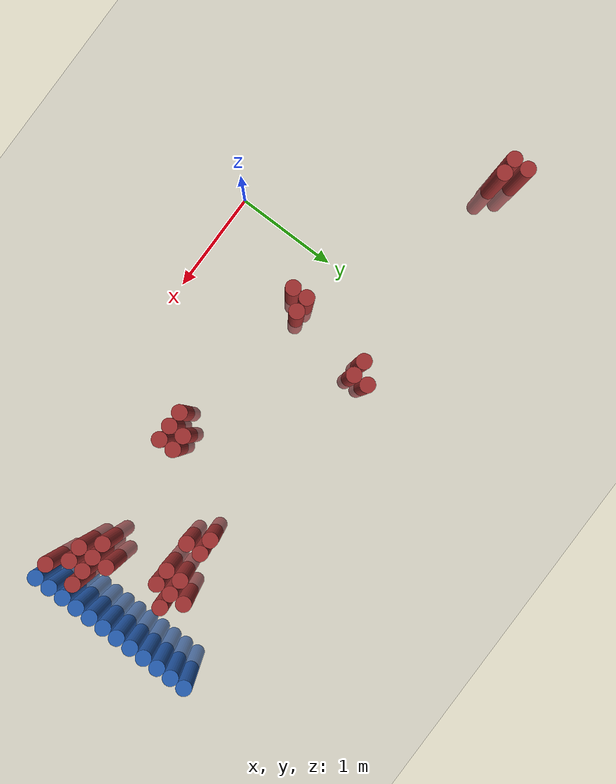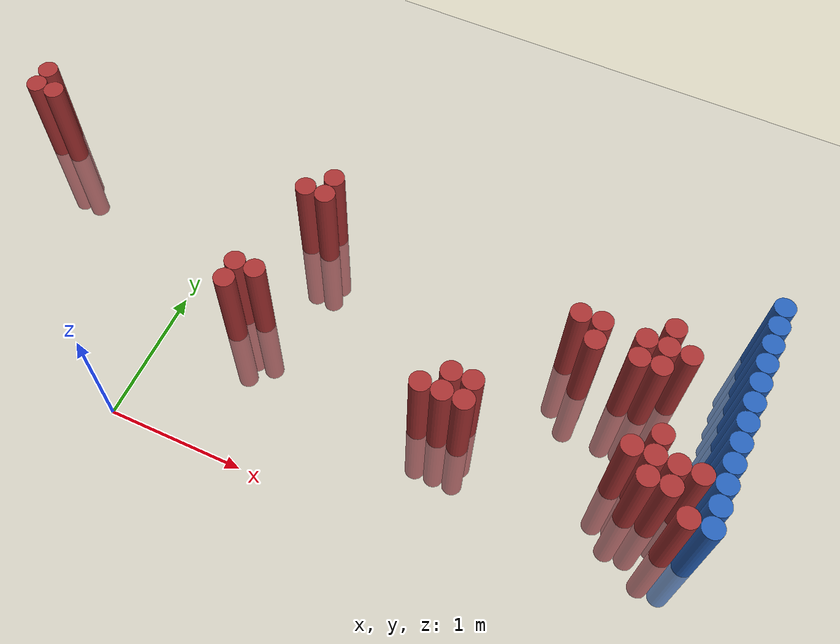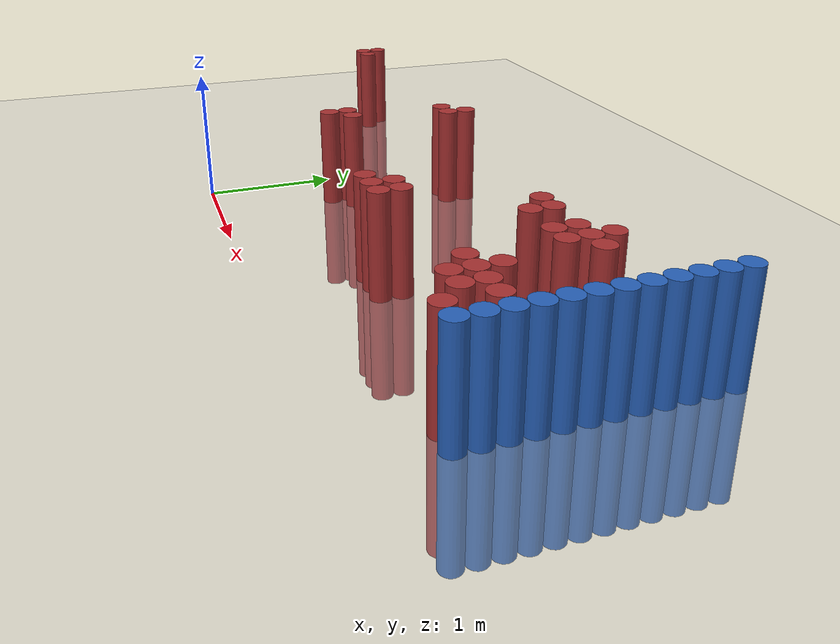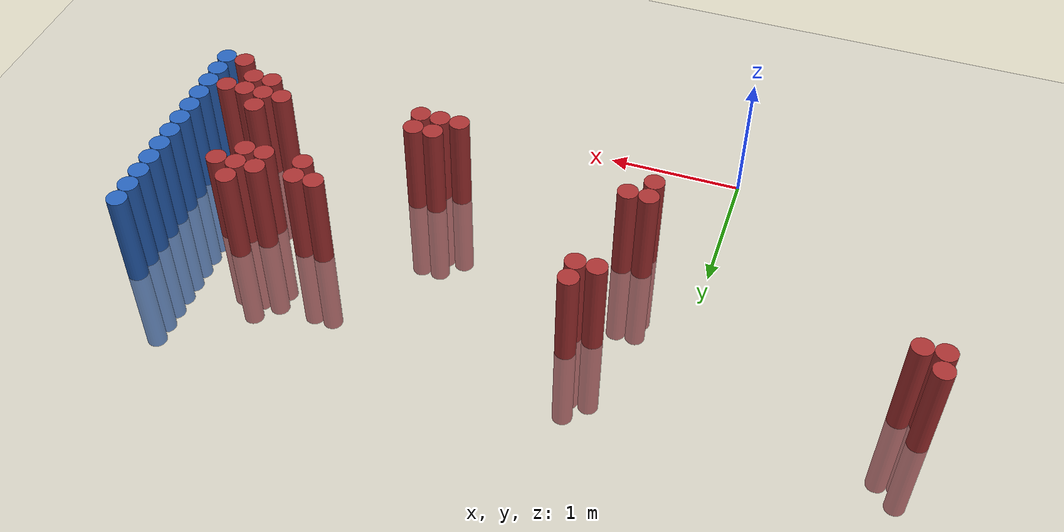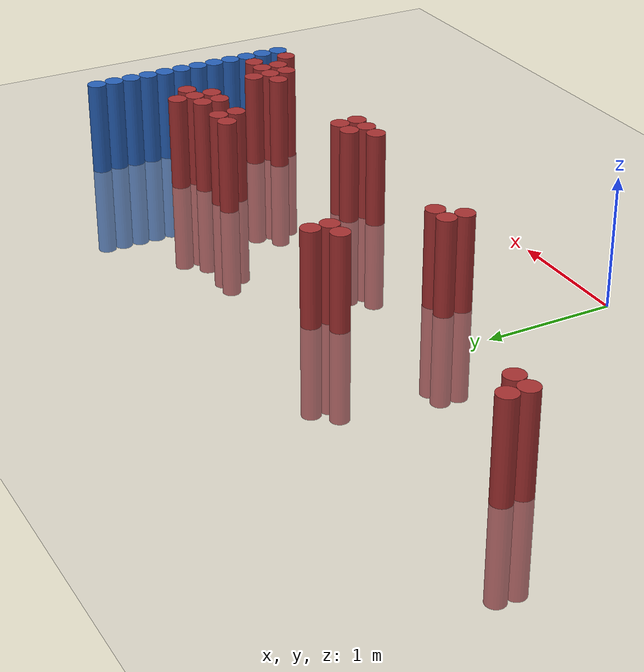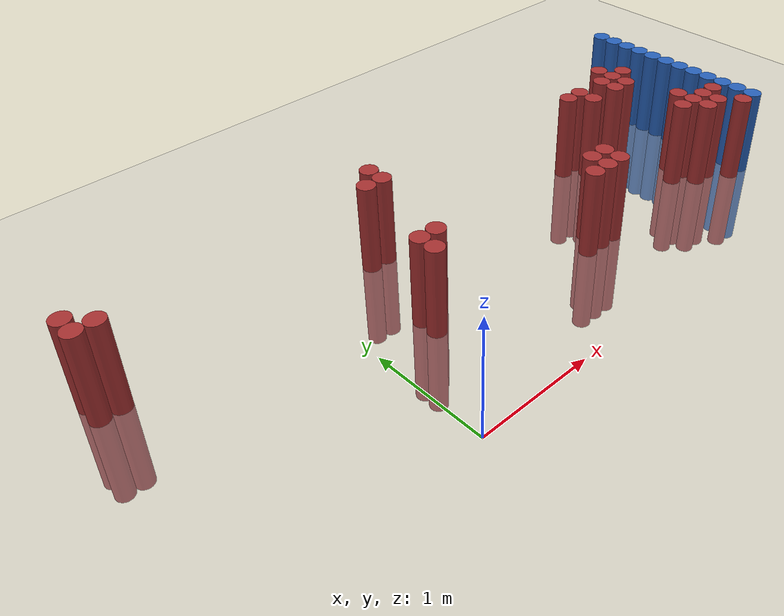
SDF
<sdf version="1.6">
 <world name="default">
  <model name="ground_plane">
   <static>1</static>
   <link name="link">
    <collision name="collision">
     <geometry><plane><normal>0 0 1</normal><size>100 100</size></plane></geometry>
     <surface><friction><ode><mu>100</mu><mu2>50</mu2></ode></friction></surface>
    </collision>
    <visual name="visual">
     <cast_shadows>0</cast_shadows>
     <geometry><plane><normal>0 0 1</normal><size>100 100</size></plane></geometry>
     <material>
      <script><uri>file://media/materials/scripts/gazebo.material</uri><name>Gazebo/Grey</name></script>
     </material>
    </visual>
   </link>
  </model>
  <model name="unit_cylinder_124">
   <static>1</static>
   <pose>3.925000 0.775000 0.000000 0.000000 0.000000 0.000000</pose>
   <link name="link">
    <inertial>
     <mass>1</mass>
     <inertia><ixx>0.145833</ixx><ixy>0</ixy><ixz>0</ixz><iyy>0.145833</iyy><iyz>0</iyz><izz>0.125</izz></inertia>
    </inertial>
    <collision name="collision">
     <geometry><cylinder><radius>0.075000</radius><length>1.5</length></cylinder></geometry>
    </collision>
    <visual name="visual">
     <geometry><cylinder><radius>0.075000</radius><length>1.5</length></cylinder></geometry>
     <material>
      <ambient>0.152000 0.379000 0.720000 1</ambient>
      <diffuse>0.152000 0.379000 0.720000 1</diffuse>
     </material>
     <material>
      <script><name>Gazebo/Grey</name><uri>file://media/materials/scripts/gazebo.material</uri></script>
     </material>
    </visual>
   </link>
  </model>
  <model name="unit_cylinder_126">
   <static>1</static>
   <pose>3.925000 0.925000 0.000000 0.000000 0.000000 0.000000</pose>
   <link name="link">
    <inertial>
     <mass>1</mass>
     <inertia><ixx>0.145833</ixx><ixy>0</ixy><ixz>0</ixz><iyy>0.145833</iyy><iyz>0</iyz><izz>0.125</izz></inertia>
    </inertial>
    <collision name="collision">
     <geometry><cylinder><radius>0.075000</radius><length>1.5</length></cylinder></geometry>
    </collision>
    <visual name="visual">
     <geometry><cylinder><radius>0.075000</radius><length>1.5</length></cylinder></geometry>
     <material>
      <ambient>0.152000 0.379000 0.720000 1</ambient>
      <diffuse>0.152000 0.379000 0.720000 1</diffuse>
     </material>
     <material>
      <script><name>Gazebo/Grey</name><uri>file://media/materials/scripts/gazebo.material</uri></script>
     </material>
    </visual>
   </link>
  </model>
  <model name="unit_cylinder_128">
   <static>1</static>
   <pose>3.925000 1.075000 0.000000 0.000000 0.000000 0.000000</pose>
   <link name="link">
    <inertial>
     <mass>1</mass>
     <inertia><ixx>0.145833</ixx><ixy>0</ixy><ixz>0</ixz><iyy>0.145833</iyy><iyz>0</iyz><izz>0.125</izz></inertia>
    </inertial>
    <collision name="collision">
     <geometry><cylinder><radius>0.075000</radius><length>1.5</length></cylinder></geometry>
    </collision>
    <visual name="visual">
     <geometry><cylinder><radius>0.075000</radius><length>1.5</length></cylinder></geometry>
     <material>
      <ambient>0.152000 0.379000 0.720000 1</ambient>
      <diffuse>0.152000 0.379000 0.720000 1</diffuse>
     </material>
     <material>
      <script><name>Gazebo/Grey</name><uri>file://media/materials/scripts/gazebo.material</uri></script>
     </material>
    </visual>
   </link>
  </model>
  <model name="unit_cylinder_130">
   <static>1</static>
   <pose>3.925000 1.225000 0.000000 0.000000 0.000000 0.000000</pose>
   <link name="link">
    <inertial>
     <mass>1</mass>
     <inertia><ixx>0.145833</ixx><ixy>0</ixy><ixz>0</ixz><iyy>0.145833</iyy><iyz>0</iyz><izz>0.125</izz></inertia>
    </inertial>
    <collision name="collision">
     <geometry><cylinder><radius>0.075000</radius><length>1.5</length></cylinder></geometry>
    </collision>
    <visual name="visual">
     <geometry><cylinder><radius>0.075000</radius><length>1.5</length></cylinder></geometry>
     <material>
      <ambient>0.152000 0.379000 0.720000 1</ambient>
      <diffuse>0.152000 0.379000 0.720000 1</diffuse>
     </material>
     <material>
      <script><name>Gazebo/Grey</name><uri>file://media/materials/scripts/gazebo.material</uri></script>
     </material>
    </visual>
   </link>
  </model>
  <model name="unit_cylinder_132">
   <static>1</static>
   <pose>3.925000 1.375000 0.000000 0.000000 0.000000 0.000000</pose>
   <link name="link">
    <inertial>
     <mass>1</mass>
     <inertia><ixx>0.145833</ixx><ixy>0</ixy><ixz>0</ixz><iyy>0.145833</iyy><iyz>0</iyz><izz>0.125</izz></inertia>
    </inertial>
    <collision name="collision">
     <geometry><cylinder><radius>0.075000</radius><length>1.5</length></cylinder></geometry>
    </collision>
    <visual name="visual">
     <geometry><cylinder><radius>0.075000</radius><length>1.5</length></cylinder></geometry>
     <material>
      <ambient>0.152000 0.379000 0.720000 1</ambient>
      <diffuse>0.152000 0.379000 0.720000 1</diffuse>
     </material>
     <material>
      <script><name>Gazebo/Grey</name><uri>file://media/materials/scripts/gazebo.material</uri></script>
     </material>
    </visual>
   </link>
  </model>
  <model name="unit_cylinder_134">
   <static>1</static>
   <pose>3.925000 1.525000 0.000000 0.000000 0.000000 0.000000</pose>
   <link name="link">
    <inertial>
     <mass>1</mass>
     <inertia><ixx>0.145833</ixx><ixy>0</ixy><ixz>0</ixz><iyy>0.145833</iyy><iyz>0</iyz><izz>0.125</izz></inertia>
    </inertial>
    <collision name="collision">
     <geometry><cylinder><radius>0.075000</radius><length>1.5</length></cylinder></geometry>
    </collision>
    <visual name="visual">
     <geometry><cylinder><radius>0.075000</radius><length>1.5</length></cylinder></geometry>
     <material>
      <ambient>0.152000 0.379000 0.720000 1</ambient>
      <diffuse>0.152000 0.379000 0.720000 1</diffuse>
     </material>
     <material>
      <script><name>Gazebo/Grey</name><uri>file://media/materials/scripts/gazebo.material</uri></script>
     </material>
    </visual>
   </link>
  </model>
  <model name="unit_cylinder_136">
   <static>1</static>
   <pose>3.925000 1.675000 0.000000 0.000000 0.000000 0.000000</pose>
   <link name="link">
    <inertial>
     <mass>1</mass>
     <inertia><ixx>0.145833</ixx><ixy>0</ixy><ixz>0</ixz><iyy>0.145833</iyy><iyz>0</iyz><izz>0.125</izz></inertia>
    </inertial>
    <collision name="collision">
     <geometry><cylinder><radius>0.075000</radius><length>1.5</length></cylinder></geometry>
    </collision>
    <visual name="visual">
     <geometry><cylinder><radius>0.075000</radius><length>1.5</length></cylinder></geometry>
     <material>
      <ambient>0.152000 0.379000 0.720000 1</ambient>
      <diffuse>0.152000 0.379000 0.720000 1</diffuse>
     </material>
     <material>
      <script><name>Gazebo/Grey</name><uri>file://media/materials/scripts/gazebo.material</uri></script>
     </material>
    </visual>
   </link>
  </model>
  <model name="unit_cylinder_138">
   <static>1</static>
   <pose>3.925000 1.825000 0.000000 0.000000 0.000000 0.000000</pose>
   <link name="link">
    <inertial>
     <mass>1</mass>
     <inertia><ixx>0.145833</ixx><ixy>0</ixy><ixz>0</ixz><iyy>0.145833</iyy><iyz>0</iyz><izz>0.125</izz></inertia>
    </inertial>
    <collision name="collision">
     <geometry><cylinder><radius>0.075000</radius><length>1.5</length></cylinder></geometry>
    </collision>
    <visual name="visual">
     <geometry><cylinder><radius>0.075000</radius><length>1.5</length></cylinder></geometry>
     <material>
      <ambient>0.152000 0.379000 0.720000 1</ambient>
      <diffuse>0.152000 0.379000 0.720000 1</diffuse>
     </material>
     <material>
      <script><name>Gazebo/Grey</name><uri>file://media/materials/scripts/gazebo.material</uri></script>
     </material>
    </visual>
   </link>
  </model>
  <model name="unit_cylinder_140">
   <static>1</static>
   <pose>3.925000 1.975000 0.000000 0.000000 0.000000 0.000000</pose>
   <link name="link">
    <inertial>
     <mass>1</mass>
     <inertia><ixx>0.145833</ixx><ixy>0</ixy><ixz>0</ixz><iyy>0.145833</iyy><iyz>0</iyz><izz>0.125</izz></inertia>
    </inertial>
    <collision name="collision">
     <geometry><cylinder><radius>0.075000</radius><length>1.5</length></cylinder></geometry>
    </collision>
    <visual name="visual">
     <geometry><cylinder><radius>0.075000</radius><length>1.5</length></cylinder></geometry>
     <material>
      <ambient>0.152000 0.379000 0.720000 1</ambient>
      <diffuse>0.152000 0.379000 0.720000 1</diffuse>
     </material>
     <material>
      <script><name>Gazebo/Grey</name><uri>file://media/materials/scripts/gazebo.material</uri></script>
     </material>
    </visual>
   </link>
  </model>
  <model name="unit_cylinder_142">
   <static>1</static>
   <pose>3.925000 2.125000 0.000000 0.000000 0.000000 0.000000</pose>
   <link name="link">
    <inertial>
     <mass>1</mass>
     <inertia><ixx>0.145833</ixx><ixy>0</ixy><ixz>0</ixz><iyy>0.145833</iyy><iyz>0</iyz><izz>0.125</izz></inertia>
    </inertial>
    <collision name="collision">
     <geometry><cylinder><radius>0.075000</radius><length>1.5</length></cylinder></geometry>
    </collision>
    <visual name="visual">
     <geometry><cylinder><radius>0.075000</radius><length>1.5</length></cylinder></geometry>
     <material>
      <ambient>0.152000 0.379000 0.720000 1</ambient>
      <diffuse>0.152000 0.379000 0.720000 1</diffuse>
     </material>
     <material>
      <script><name>Gazebo/Grey</name><uri>file://media/materials/scripts/gazebo.material</uri></script>
     </material>
    </visual>
   </link>
  </model>
  <model name="unit_cylinder_144">
   <static>1</static>
   <pose>3.925000 2.275000 0.000000 0.000000 0.000000 0.000000</pose>
   <link name="link">
    <inertial>
     <mass>1</mass>
     <inertia><ixx>0.145833</ixx><ixy>0</ixy><ixz>0</ixz><iyy>0.145833</iyy><iyz>0</iyz><izz>0.125</izz></inertia>
    </inertial>
    <collision name="collision">
     <geometry><cylinder><radius>0.075000</radius><length>1.5</length></cylinder></geometry>
    </collision>
    <visual name="visual">
     <geometry><cylinder><radius>0.075000</radius><length>1.5</length></cylinder></geometry>
     <material>
      <ambient>0.152000 0.379000 0.720000 1</ambient>
      <diffuse>0.152000 0.379000 0.720000 1</diffuse>
     </material>
     <material>
      <script><name>Gazebo/Grey</name><uri>file://media/materials/scripts/gazebo.material</uri></script>
     </material>
    </visual>
   </link>
  </model>
  <model name="unit_cylinder_305">
   <static>1</static>
   <pose>-1.625000 1.825000 0.000000 0.000000 0.000000 0.000000</pose>
   <link name="link">
    <inertial>
     <mass>1</mass>
     <inertia><ixx>0.145833</ixx><ixy>0</ixy><ixz>0</ixz><iyy>0.145833</iyy><iyz>0</iyz><izz>0.125</izz></inertia>
    </inertial>
    <collision name="collision">
     <geometry><cylinder><radius>0.075000</radius><length>1.5</length></cylinder></geometry>
    </collision>
    <visual name="visual">
     <geometry><cylinder><radius>0.075000</radius><length>1.5</length></cylinder></geometry>
     <material>
      <ambient>0.648000 0.192000 0.192000 1</ambient>
      <diffuse>0.648000 0.192000 0.192000 1</diffuse>
     </material>
     <material>
      <script><name>Gazebo/Grey</name><uri>file://media/materials/scripts/gazebo.material</uri></script>
     </material>
    </visual>
   </link>
  </model>
  <model name="unit_cylinder_306">
   <static>1</static>
   <pose>-1.625000 1.975000 0.000000 0.000000 0.000000 0.000000</pose>
   <link name="link">
    <inertial>
     <mass>1</mass>
     <inertia><ixx>0.145833</ixx><ixy>0</ixy><ixz>0</ixz><iyy>0.145833</iyy><iyz>0</iyz><izz>0.125</izz></inertia>
    </inertial>
    <collision name="collision">
     <geometry><cylinder><radius>0.075000</radius><length>1.5</length></cylinder></geometry>
    </collision>
    <visual name="visual">
     <geometry><cylinder><radius>0.075000</radius><length>1.5</length></cylinder></geometry>
     <material>
      <ambient>0.648000 0.192000 0.192000 1</ambient>
      <diffuse>0.648000 0.192000 0.192000 1</diffuse>
     </material>
     <material>
      <script><name>Gazebo/Grey</name><uri>file://media/materials/scripts/gazebo.material</uri></script>
     </material>
    </visual>
   </link>
  </model>
  <model name="unit_cylinder_308">
   <static>1</static>
   <pose>-1.475000 1.825000 0.000000 0.000000 0.000000 0.000000</pose>
   <link name="link">
    <inertial>
     <mass>1</mass>
     <inertia><ixx>0.145833</ixx><ixy>0</ixy><ixz>0</ixz><iyy>0.145833</iyy><iyz>0</iyz><izz>0.125</izz></inertia>
    </inertial>
    <collision name="collision">
     <geometry><cylinder><radius>0.075000</radius><length>1.5</length></cylinder></geometry>
    </collision>
    <visual name="visual">
     <geometry><cylinder><radius>0.075000</radius><length>1.5</length></cylinder></geometry>
     <material>
      <ambient>0.648000 0.192000 0.192000 1</ambient>
      <diffuse>0.648000 0.192000 0.192000 1</diffuse>
     </material>
     <material>
      <script><name>Gazebo/Grey</name><uri>file://media/materials/scripts/gazebo.material</uri></script>
     </material>
    </visual>
   </link>
  </model>
  <model name="unit_cylinder_334">
   <static>1</static>
   <pose>0.475000 0.925000 0.000000 0.000000 0.000000 0.000000</pose>
   <link name="link">
    <inertial>
     <mass>1</mass>
     <inertia><ixx>0.145833</ixx><ixy>0</ixy><ixz>0</ixz><iyy>0.145833</iyy><iyz>0</iyz><izz>0.125</izz></inertia>
    </inertial>
    <collision name="collision">
     <geometry><cylinder><radius>0.075000</radius><length>1.5</length></cylinder></geometry>
    </collision>
    <visual name="visual">
     <geometry><cylinder><radius>0.075000</radius><length>1.5</length></cylinder></geometry>
     <material>
      <ambient>0.648000 0.192000 0.192000 1</ambient>
      <diffuse>0.648000 0.192000 0.192000 1</diffuse>
     </material>
     <material>
      <script><name>Gazebo/Grey</name><uri>file://media/materials/scripts/gazebo.material</uri></script>
     </material>
    </visual>
   </link>
  </model>
  <model name="unit_cylinder_335">
   <static>1</static>
   <pose>0.475000 1.075000 0.000000 0.000000 0.000000 0.000000</pose>
   <link name="link">
    <inertial>
     <mass>1</mass>
     <inertia><ixx>0.145833</ixx><ixy>0</ixy><ixz>0</ixz><iyy>0.145833</iyy><iyz>0</iyz><izz>0.125</izz></inertia>
    </inertial>
    <collision name="collision">
     <geometry><cylinder><radius>0.075000</radius><length>1.5</length></cylinder></geometry>
    </collision>
    <visual name="visual">
     <geometry><cylinder><radius>0.075000</radius><length>1.5</length></cylinder></geometry>
     <material>
      <ambient>0.648000 0.192000 0.192000 1</ambient>
      <diffuse>0.648000 0.192000 0.192000 1</diffuse>
     </material>
     <material>
      <script><name>Gazebo/Grey</name><uri>file://media/materials/scripts/gazebo.material</uri></script>
     </material>
    </visual>
   </link>
  </model>
  <model name="unit_cylinder_336">
   <static>1</static>
   <pose>0.625000 1.075000 0.000000 0.000000 0.000000 0.000000</pose>
   <link name="link">
    <inertial>
     <mass>1</mass>
     <inertia><ixx>0.145833</ixx><ixy>0</ixy><ixz>0</ixz><iyy>0.145833</iyy><iyz>0</iyz><izz>0.125</izz></inertia>
    </inertial>
    <collision name="collision">
     <geometry><cylinder><radius>0.075000</radius><length>1.5</length></cylinder></geometry>
    </collision>
    <visual name="visual">
     <geometry><cylinder><radius>0.075000</radius><length>1.5</length></cylinder></geometry>
     <material>
      <ambient>0.648000 0.192000 0.192000 1</ambient>
      <diffuse>0.648000 0.192000 0.192000 1</diffuse>
     </material>
     <material>
      <script><name>Gazebo/Grey</name><uri>file://media/materials/scripts/gazebo.material</uri></script>
     </material>
    </visual>
   </link>
  </model>
  <model name="unit_cylinder_337">
   <static>1</static>
   <pose>0.625000 1.825000 0.000000 0.000000 0.000000 0.000000</pose>
   <link name="link">
    <inertial>
     <mass>1</mass>
     <inertia><ixx>0.145833</ixx><ixy>0</ixy><ixz>0</ixz><iyy>0.145833</iyy><iyz>0</iyz><izz>0.125</izz></inertia>
    </inertial>
    <collision name="collision">
     <geometry><cylinder><radius>0.075000</radius><length>1.5</length></cylinder></geometry>
    </collision>
    <visual name="visual">
     <geometry><cylinder><radius>0.075000</radius><length>1.5</length></cylinder></geometry>
     <material>
      <ambient>0.648000 0.192000 0.192000 1</ambient>
      <diffuse>0.648000 0.192000 0.192000 1</diffuse>
     </material>
     <material>
      <script><name>Gazebo/Grey</name><uri>file://media/materials/scripts/gazebo.material</uri></script>
     </material>
    </visual>
   </link>
  </model>
  <model name="unit_cylinder_338">
   <static>1</static>
   <pose>0.775000 1.825000 0.000000 0.000000 0.000000 0.000000</pose>
   <link name="link">
    <inertial>
     <mass>1</mass>
     <inertia><ixx>0.145833</ixx><ixy>0</ixy><ixz>0</ixz><iyy>0.145833</iyy><iyz>0</iyz><izz>0.125</izz></inertia>
    </inertial>
    <collision name="collision">
     <geometry><cylinder><radius>0.075000</radius><length>1.5</length></cylinder></geometry>
    </collision>
    <visual name="visual">
     <geometry><cylinder><radius>0.075000</radius><length>1.5</length></cylinder></geometry>
     <material>
      <ambient>0.648000 0.192000 0.192000 1</ambient>
      <diffuse>0.648000 0.192000 0.192000 1</diffuse>
     </material>
     <material>
      <script><name>Gazebo/Grey</name><uri>file://media/materials/scripts/gazebo.material</uri></script>
     </material>
    </visual>
   </link>
  </model>
  <model name="unit_cylinder_339">
   <static>1</static>
   <pose>0.775000 1.975000 0.000000 0.000000 0.000000 0.000000</pose>
   <link name="link">
    <inertial>
     <mass>1</mass>
     <inertia><ixx>0.145833</ixx><ixy>0</ixy><ixz>0</ixz><iyy>0.145833</iyy><iyz>0</iyz><izz>0.125</izz></inertia>
    </inertial>
    <collision name="collision">
     <geometry><cylinder><radius>0.075000</radius><length>1.5</length></cylinder></geometry>
    </collision>
    <visual name="visual">
     <geometry><cylinder><radius>0.075000</radius><length>1.5</length></cylinder></geometry>
     <material>
      <ambient>0.648000 0.192000 0.192000 1</ambient>
      <diffuse>0.648000 0.192000 0.192000 1</diffuse>
     </material>
     <material>
      <script><name>Gazebo/Grey</name><uri>file://media/materials/scripts/gazebo.material</uri></script>
     </material>
    </visual>
   </link>
  </model>
  <model name="unit_cylinder_366">
   <static>1</static>
   <pose>1.975000 0.775000 0.000000 0.000000 0.000000 0.000000</pose>
   <link name="link">
    <inertial>
     <mass>1</mass>
     <inertia><ixx>0.145833</ixx><ixy>0</ixy><ixz>0</ixz><iyy>0.145833</iyy><iyz>0</iyz><izz>0.125</izz></inertia>
    </inertial>
    <collision name="collision">
     <geometry><cylinder><radius>0.075000</radius><length>1.5</length></cylinder></geometry>
    </collision>
    <visual name="visual">
     <geometry><cylinder><radius>0.075000</radius><length>1.5</length></cylinder></geometry>
     <material>
      <ambient>0.648000 0.192000 0.192000 1</ambient>
      <diffuse>0.648000 0.192000 0.192000 1</diffuse>
     </material>
     <material>
      <script><name>Gazebo/Grey</name><uri>file://media/materials/scripts/gazebo.material</uri></script>
     </material>
    </visual>
   </link>
  </model>
  <model name="unit_cylinder_369">
   <static>1</static>
   <pose>2.125000 0.775000 0.000000 0.000000 0.000000 0.000000</pose>
   <link name="link">
    <inertial>
     <mass>1</mass>
     <inertia><ixx>0.145833</ixx><ixy>0</ixy><ixz>0</ixz><iyy>0.145833</iyy><iyz>0</iyz><izz>0.125</izz></inertia>
    </inertial>
    <collision name="collision">
     <geometry><cylinder><radius>0.075000</radius><length>1.5</length></cylinder></geometry>
    </collision>
    <visual name="visual">
     <geometry><cylinder><radius>0.075000</radius><length>1.5</length></cylinder></geometry>
     <material>
      <ambient>0.648000 0.192000 0.192000 1</ambient>
      <diffuse>0.648000 0.192000 0.192000 1</diffuse>
     </material>
     <material>
      <script><name>Gazebo/Grey</name><uri>file://media/materials/scripts/gazebo.material</uri></script>
     </material>
    </visual>
   </link>
  </model>
  <model name="unit_cylinder_370">
   <static>1</static>
   <pose>2.125000 0.925000 0.000000 0.000000 0.000000 0.000000</pose>
   <link name="link">
    <inertial>
     <mass>1</mass>
     <inertia><ixx>0.145833</ixx><ixy>0</ixy><ixz>0</ixz><iyy>0.145833</iyy><iyz>0</iyz><izz>0.125</izz></inertia>
    </inertial>
    <collision name="collision">
     <geometry><cylinder><radius>0.075000</radius><length>1.5</length></cylinder></geometry>
    </collision>
    <visual name="visual">
     <geometry><cylinder><radius>0.075000</radius><length>1.5</length></cylinder></geometry>
     <material>
      <ambient>0.648000 0.192000 0.192000 1</ambient>
      <diffuse>0.648000 0.192000 0.192000 1</diffuse>
     </material>
     <material>
      <script><name>Gazebo/Grey</name><uri>file://media/materials/scripts/gazebo.material</uri></script>
     </material>
    </visual>
   </link>
  </model>
  <model name="unit_cylinder_372">
   <static>1</static>
   <pose>2.275000 0.775000 0.000000 0.000000 0.000000 0.000000</pose>
   <link name="link">
    <inertial>
     <mass>1</mass>
     <inertia><ixx>0.145833</ixx><ixy>0</ixy><ixz>0</ixz><iyy>0.145833</iyy><iyz>0</iyz><izz>0.125</izz></inertia>
    </inertial>
    <collision name="collision">
     <geometry><cylinder><radius>0.075000</radius><length>1.5</length></cylinder></geometry>
    </collision>
    <visual name="visual">
     <geometry><cylinder><radius>0.075000</radius><length>1.5</length></cylinder></geometry>
     <material>
      <ambient>0.648000 0.192000 0.192000 1</ambient>
      <diffuse>0.648000 0.192000 0.192000 1</diffuse>
     </material>
     <material>
      <script><name>Gazebo/Grey</name><uri>file://media/materials/scripts/gazebo.material</uri></script>
     </material>
    </visual>
   </link>
  </model>
  <model name="unit_cylinder_373">
   <static>1</static>
   <pose>2.275000 0.925000 0.000000 0.000000 0.000000 0.000000</pose>
   <link name="link">
    <inertial>
     <mass>1</mass>
     <inertia><ixx>0.145833</ixx><ixy>0</ixy><ixz>0</ixz><iyy>0.145833</iyy><iyz>0</iyz><izz>0.125</izz></inertia>
    </inertial>
    <collision name="collision">
     <geometry><cylinder><radius>0.075000</radius><length>1.5</length></cylinder></geometry>
    </collision>
    <visual name="visual">
     <geometry><cylinder><radius>0.075000</radius><length>1.5</length></cylinder></geometry>
     <material>
      <ambient>0.648000 0.192000 0.192000 1</ambient>
      <diffuse>0.648000 0.192000 0.192000 1</diffuse>
     </material>
     <material>
      <script><name>Gazebo/Grey</name><uri>file://media/materials/scripts/gazebo.material</uri></script>
     </material>
    </visual>
   </link>
  </model>
  <model name="unit_cylinder_376">
   <static>1</static>
   <pose>2.725000 1.675000 0.000000 0.000000 0.000000 0.000000</pose>
   <link name="link">
    <inertial>
     <mass>1</mass>
     <inertia><ixx>0.145833</ixx><ixy>0</ixy><ixz>0</ixz><iyy>0.145833</iyy><iyz>0</iyz><izz>0.125</izz></inertia>
    </inertial>
    <collision name="collision">
     <geometry><cylinder><radius>0.075000</radius><length>1.5</length></cylinder></geometry>
    </collision>
    <visual name="visual">
     <geometry><cylinder><radius>0.075000</radius><length>1.5</length></cylinder></geometry>
     <material>
      <ambient>0.648000 0.192000 0.192000 1</ambient>
      <diffuse>0.648000 0.192000 0.192000 1</diffuse>
     </material>
     <material>
      <script><name>Gazebo/Grey</name><uri>file://media/materials/scripts/gazebo.material</uri></script>
     </material>
    </visual>
   </link>
  </model>
  <model name="unit_cylinder_381">
   <static>1</static>
   <pose>2.875000 1.525000 0.000000 0.000000 0.000000 0.000000</pose>
   <link name="link">
    <inertial>
     <mass>1</mass>
     <inertia><ixx>0.145833</ixx><ixy>0</ixy><ixz>0</ixz><iyy>0.145833</iyy><iyz>0</iyz><izz>0.125</izz></inertia>
    </inertial>
    <collision name="collision">
     <geometry><cylinder><radius>0.075000</radius><length>1.5</length></cylinder></geometry>
    </collision>
    <visual name="visual">
     <geometry><cylinder><radius>0.075000</radius><length>1.5</length></cylinder></geometry>
     <material>
      <ambient>0.648000 0.192000 0.192000 1</ambient>
      <diffuse>0.648000 0.192000 0.192000 1</diffuse>
     </material>
     <material>
      <script><name>Gazebo/Grey</name><uri>file://media/materials/scripts/gazebo.material</uri></script>
     </material>
    </visual>
   </link>
  </model>
  <model name="unit_cylinder_382">
   <static>1</static>
   <pose>2.875000 1.675000 0.000000 0.000000 0.000000 0.000000</pose>
   <link name="link">
    <inertial>
     <mass>1</mass>
     <inertia><ixx>0.145833</ixx><ixy>0</ixy><ixz>0</ixz><iyy>0.145833</iyy><iyz>0</iyz><izz>0.125</izz></inertia>
    </inertial>
    <collision name="collision">
     <geometry><cylinder><radius>0.075000</radius><length>1.5</length></cylinder></geometry>
    </collision>
    <visual name="visual">
     <geometry><cylinder><radius>0.075000</radius><length>1.5</length></cylinder></geometry>
     <material>
      <ambient>0.648000 0.192000 0.192000 1</ambient>
      <diffuse>0.648000 0.192000 0.192000 1</diffuse>
     </material>
     <material>
      <script><name>Gazebo/Grey</name><uri>file://media/materials/scripts/gazebo.material</uri></script>
     </material>
    </visual>
   </link>
  </model>
  <model name="unit_cylinder_386">
   <static>1</static>
   <pose>3.175000 1.525000 0.000000 0.000000 0.000000 0.000000</pose>
   <link name="link">
    <inertial>
     <mass>1</mass>
     <inertia><ixx>0.145833</ixx><ixy>0</ixy><ixz>0</ixz><iyy>0.145833</iyy><iyz>0</iyz><izz>0.125</izz></inertia>
    </inertial>
    <collision name="collision">
     <geometry><cylinder><radius>0.075000</radius><length>1.5</length></cylinder></geometry>
    </collision>
    <visual name="visual">
     <geometry><cylinder><radius>0.075000</radius><length>1.5</length></cylinder></geometry>
     <material>
      <ambient>0.648000 0.192000 0.192000 1</ambient>
      <diffuse>0.648000 0.192000 0.192000 1</diffuse>
     </material>
     <material>
      <script><name>Gazebo/Grey</name><uri>file://media/materials/scripts/gazebo.material</uri></script>
     </material>
    </visual>
   </link>
  </model>
  <model name="unit_cylinder_387">
   <static>1</static>
   <pose>3.175000 1.675000 0.000000 0.000000 0.000000 0.000000</pose>
   <link name="link">
    <inertial>
     <mass>1</mass>
     <inertia><ixx>0.145833</ixx><ixy>0</ixy><ixz>0</ixz><iyy>0.145833</iyy><iyz>0</iyz><izz>0.125</izz></inertia>
    </inertial>
    <collision name="collision">
     <geometry><cylinder><radius>0.075000</radius><length>1.5</length></cylinder></geometry>
    </collision>
    <visual name="visual">
     <geometry><cylinder><radius>0.075000</radius><length>1.5</length></cylinder></geometry>
     <material>
      <ambient>0.648000 0.192000 0.192000 1</ambient>
      <diffuse>0.648000 0.192000 0.192000 1</diffuse>
     </material>
     <material>
      <script><name>Gazebo/Grey</name><uri>file://media/materials/scripts/gazebo.material</uri></script>
     </material>
    </visual>
   </link>
  </model>
  <model name="unit_cylinder_388">
   <static>1</static>
   <pose>3.325000 0.925000 0.000000 0.000000 0.000000 0.000000</pose>
   <link name="link">
    <inertial>
     <mass>1</mass>
     <inertia><ixx>0.145833</ixx><ixy>0</ixy><ixz>0</ixz><iyy>0.145833</iyy><iyz>0</iyz><izz>0.125</izz></inertia>
    </inertial>
    <collision name="collision">
     <geometry><cylinder><radius>0.075000</radius><length>1.5</length></cylinder></geometry>
    </collision>
    <visual name="visual">
     <geometry><cylinder><radius>0.075000</radius><length>1.5</length></cylinder></geometry>
     <material>
      <ambient>0.648000 0.192000 0.192000 1</ambient>
      <diffuse>0.648000 0.192000 0.192000 1</diffuse>
     </material>
     <material>
      <script><name>Gazebo/Grey</name><uri>file://media/materials/scripts/gazebo.material</uri></script>
     </material>
    </visual>
   </link>
  </model>
  <model name="unit_cylinder_389">
   <static>1</static>
   <pose>3.325000 1.525000 0.000000 0.000000 0.000000 0.000000</pose>
   <link name="link">
    <inertial>
     <mass>1</mass>
     <inertia><ixx>0.145833</ixx><ixy>0</ixy><ixz>0</ixz><iyy>0.145833</iyy><iyz>0</iyz><izz>0.125</izz></inertia>
    </inertial>
    <collision name="collision">
     <geometry><cylinder><radius>0.075000</radius><length>1.5</length></cylinder></geometry>
    </collision>
    <visual name="visual">
     <geometry><cylinder><radius>0.075000</radius><length>1.5</length></cylinder></geometry>
     <material>
      <ambient>0.648000 0.192000 0.192000 1</ambient>
      <diffuse>0.648000 0.192000 0.192000 1</diffuse>
     </material>
     <material>
      <script><name>Gazebo/Grey</name><uri>file://media/materials/scripts/gazebo.material</uri></script>
     </material>
    </visual>
   </link>
  </model>
  <model name="unit_cylinder_390">
   <static>1</static>
   <pose>3.325000 1.675000 0.000000 0.000000 0.000000 0.000000</pose>
   <link name="link">
    <inertial>
     <mass>1</mass>
     <inertia><ixx>0.145833</ixx><ixy>0</ixy><ixz>0</ixz><iyy>0.145833</iyy><iyz>0</iyz><izz>0.125</izz></inertia>
    </inertial>
    <collision name="collision">
     <geometry><cylinder><radius>0.075000</radius><length>1.5</length></cylinder></geometry>
    </collision>
    <visual name="visual">
     <geometry><cylinder><radius>0.075000</radius><length>1.5</length></cylinder></geometry>
     <material>
      <ambient>0.648000 0.192000 0.192000 1</ambient>
      <diffuse>0.648000 0.192000 0.192000 1</diffuse>
     </material>
     <material>
      <script><name>Gazebo/Grey</name><uri>file://media/materials/scripts/gazebo.material</uri></script>
     </material>
    </visual>
   </link>
  </model>
  <model name="unit_cylinder_391">
   <static>1</static>
   <pose>3.325000 1.825000 0.000000 0.000000 0.000000 0.000000</pose>
   <link name="link">
    <inertial>
     <mass>1</mass>
     <inertia><ixx>0.145833</ixx><ixy>0</ixy><ixz>0</ixz><iyy>0.145833</iyy><iyz>0</iyz><izz>0.125</izz></inertia>
    </inertial>
    <collision name="collision">
     <geometry><cylinder><radius>0.075000</radius><length>1.5</length></cylinder></geometry>
    </collision>
    <visual name="visual">
     <geometry><cylinder><radius>0.075000</radius><length>1.5</length></cylinder></geometry>
     <material>
      <ambient>0.648000 0.192000 0.192000 1</ambient>
      <diffuse>0.648000 0.192000 0.192000 1</diffuse>
     </material>
     <material>
      <script><name>Gazebo/Grey</name><uri>file://media/materials/scripts/gazebo.material</uri></script>
     </material>
    </visual>
   </link>
  </model>
  <model name="unit_cylinder_395">
   <static>1</static>
   <pose>3.475000 0.775000 0.000000 0.000000 0.000000 0.000000</pose>
   <link name="link">
    <inertial>
     <mass>1</mass>
     <inertia><ixx>0.145833</ixx><ixy>0</ixy><ixz>0</ixz><iyy>0.145833</iyy><iyz>0</iyz><izz>0.125</izz></inertia>
    </inertial>
    <collision name="collision">
     <geometry><cylinder><radius>0.075000</radius><length>1.5</length></cylinder></geometry>
    </collision>
    <visual name="visual">
     <geometry><cylinder><radius>0.075000</radius><length>1.5</length></cylinder></geometry>
     <material>
      <ambient>0.648000 0.192000 0.192000 1</ambient>
      <diffuse>0.648000 0.192000 0.192000 1</diffuse>
     </material>
     <material>
      <script><name>Gazebo/Grey</name><uri>file://media/materials/scripts/gazebo.material</uri></script>
     </material>
    </visual>
   </link>
  </model>
  <model name="unit_cylinder_396">
   <static>1</static>
   <pose>3.475000 0.925000 0.000000 0.000000 0.000000 0.000000</pose>
   <link name="link">
    <inertial>
     <mass>1</mass>
     <inertia><ixx>0.145833</ixx><ixy>0</ixy><ixz>0</ixz><iyy>0.145833</iyy><iyz>0</iyz><izz>0.125</izz></inertia>
    </inertial>
    <collision name="collision">
     <geometry><cylinder><radius>0.075000</radius><length>1.5</length></cylinder></geometry>
    </collision>
    <visual name="visual">
     <geometry><cylinder><radius>0.075000</radius><length>1.5</length></cylinder></geometry>
     <material>
      <ambient>0.648000 0.192000 0.192000 1</ambient>
      <diffuse>0.648000 0.192000 0.192000 1</diffuse>
     </material>
     <material>
      <script><name>Gazebo/Grey</name><uri>file://media/materials/scripts/gazebo.material</uri></script>
     </material>
    </visual>
   </link>
  </model>
  <model name="unit_cylinder_397">
   <static>1</static>
   <pose>3.475000 1.075000 0.000000 0.000000 0.000000 0.000000</pose>
   <link name="link">
    <inertial>
     <mass>1</mass>
     <inertia><ixx>0.145833</ixx><ixy>0</ixy><ixz>0</ixz><iyy>0.145833</iyy><iyz>0</iyz><izz>0.125</izz></inertia>
    </inertial>
    <collision name="collision">
     <geometry><cylinder><radius>0.075000</radius><length>1.5</length></cylinder></geometry>
    </collision>
    <visual name="visual">
     <geometry><cylinder><radius>0.075000</radius><length>1.5</length></cylinder></geometry>
     <material>
      <ambient>0.648000 0.192000 0.192000 1</ambient>
      <diffuse>0.648000 0.192000 0.192000 1</diffuse>
     </material>
     <material>
      <script><name>Gazebo/Grey</name><uri>file://media/materials/scripts/gazebo.material</uri></script>
     </material>
    </visual>
   </link>
  </model>
  <model name="unit_cylinder_398">
   <static>1</static>
   <pose>3.475000 1.675000 0.000000 0.000000 0.000000 0.000000</pose>
   <link name="link">
    <inertial>
     <mass>1</mass>
     <inertia><ixx>0.145833</ixx><ixy>0</ixy><ixz>0</ixz><iyy>0.145833</iyy><iyz>0</iyz><izz>0.125</izz></inertia>
    </inertial>
    <collision name="collision">
     <geometry><cylinder><radius>0.075000</radius><length>1.5</length></cylinder></geometry>
    </collision>
    <visual name="visual">
     <geometry><cylinder><radius>0.075000</radius><length>1.5</length></cylinder></geometry>
     <material>
      <ambient>0.648000 0.192000 0.192000 1</ambient>
      <diffuse>0.648000 0.192000 0.192000 1</diffuse>
     </material>
     <material>
      <script><name>Gazebo/Grey</name><uri>file://media/materials/scripts/gazebo.material</uri></script>
     </material>
    </visual>
   </link>
  </model>
  <model name="unit_cylinder_404">
   <static>1</static>
   <pose>3.625000 0.775000 0.000000 0.000000 0.000000 0.000000</pose>
   <link name="link">
    <inertial>
     <mass>1</mass>
     <inertia><ixx>0.145833</ixx><ixy>0</ixy><ixz>0</ixz><iyy>0.145833</iyy><iyz>0</iyz><izz>0.125</izz></inertia>
    </inertial>
    <collision name="collision">
     <geometry><cylinder><radius>0.075000</radius><length>1.5</length></cylinder></geometry>
    </collision>
    <visual name="visual">
     <geometry><cylinder><radius>0.075000</radius><length>1.5</length></cylinder></geometry>
     <material>
      <ambient>0.648000 0.192000 0.192000 1</ambient>
      <diffuse>0.648000 0.192000 0.192000 1</diffuse>
     </material>
     <material>
      <script><name>Gazebo/Grey</name><uri>file://media/materials/scripts/gazebo.material</uri></script>
     </material>
    </visual>
   </link>
  </model>
  <model name="unit_cylinder_405">
   <static>1</static>
   <pose>3.625000 0.925000 0.000000 0.000000 0.000000 0.000000</pose>
   <link name="link">
    <inertial>
     <mass>1</mass>
     <inertia><ixx>0.145833</ixx><ixy>0</ixy><ixz>0</ixz><iyy>0.145833</iyy><iyz>0</iyz><izz>0.125</izz></inertia>
    </inertial>
    <collision name="collision">
     <geometry><cylinder><radius>0.075000</radius><length>1.5</length></cylinder></geometry>
    </collision>
    <visual name="visual">
     <geometry><cylinder><radius>0.075000</radius><length>1.5</length></cylinder></geometry>
     <material>
      <ambient>0.648000 0.192000 0.192000 1</ambient>
      <diffuse>0.648000 0.192000 0.192000 1</diffuse>
     </material>
     <material>
      <script><name>Gazebo/Grey</name><uri>file://media/materials/scripts/gazebo.material</uri></script>
     </material>
    </visual>
   </link>
  </model>
  <model name="unit_cylinder_415">
   <static>1</static>
   <pose>3.775000 0.625000 0.000000 0.000000 0.000000 0.000000</pose>
   <link name="link">
    <inertial>
     <mass>1</mass>
     <inertia><ixx>0.145833</ixx><ixy>0</ixy><ixz>0</ixz><iyy>0.145833</iyy><iyz>0</iyz><izz>0.125</izz></inertia>
    </inertial>
    <collision name="collision">
     <geometry><cylinder><radius>0.075000</radius><length>1.5</length></cylinder></geometry>
    </collision>
    <visual name="visual">
     <geometry><cylinder><radius>0.075000</radius><length>1.5</length></cylinder></geometry>
     <material>
      <ambient>0.648000 0.192000 0.192000 1</ambient>
      <diffuse>0.648000 0.192000 0.192000 1</diffuse>
     </material>
     <material>
      <script><name>Gazebo/Grey</name><uri>file://media/materials/scripts/gazebo.material</uri></script>
     </material>
    </visual>
   </link>
  </model>
  <model name="unit_cylinder_416">
   <static>1</static>
   <pose>3.775000 0.925000 0.000000 0.000000 0.000000 0.000000</pose>
   <link name="link">
    <inertial>
     <mass>1</mass>
     <inertia><ixx>0.145833</ixx><ixy>0</ixy><ixz>0</ixz><iyy>0.145833</iyy><iyz>0</iyz><izz>0.125</izz></inertia>
    </inertial>
    <collision name="collision">
     <geometry><cylinder><radius>0.075000</radius><length>1.5</length></cylinder></geometry>
    </collision>
    <visual name="visual">
     <geometry><cylinder><radius>0.075000</radius><length>1.5</length></cylinder></geometry>
     <material>
      <ambient>0.648000 0.192000 0.192000 1</ambient>
      <diffuse>0.648000 0.192000 0.192000 1</diffuse>
     </material>
     <material>
      <script><name>Gazebo/Grey</name><uri>file://media/materials/scripts/gazebo.material</uri></script>
     </material>
    </visual>
   </link>
  </model>
  <model name="unit_cylinder_444">
   <static>1</static>
   <pose>3.925000 0.625000 0.000000 0.000000 0.000000 0.000000</pose>
   <link name="link">
    <inertial>
     <mass>1</mass>
     <inertia><ixx>0.145833</ixx><ixy>0</ixy><ixz>0</ixz><iyy>0.145833</iyy><iyz>0</iyz><izz>0.125</izz></inertia>
    </inertial>
    <collision name="collision">
     <geometry><cylinder><radius>0.075000</radius><length>1.5</length></cylinder></geometry>
    </collision>
    <visual name="visual">
     <geometry><cylinder><radius>0.075000</radius><length>1.5</length></cylinder></geometry>
     <material>
      <ambient>0.152000 0.379000 0.720000 1</ambient>
      <diffuse>0.152000 0.379000 0.720000 1</diffuse>
     </material>
     <material>
      <script><name>Gazebo/Grey</name><uri>file://media/materials/scripts/gazebo.material</uri></script>
     </material>
    </visual>
   </link>
  </model>
  <model name="unit_cylinder_445">
   <static>1</static>
   <pose>3.925000 0.775000 0.000000 0.000000 0.000000 0.000000</pose>
   <link name="link">
    <inertial>
     <mass>1</mass>
     <inertia><ixx>0.145833</ixx><ixy>0</ixy><ixz>0</ixz><iyy>0.145833</iyy><iyz>0</iyz><izz>0.125</izz></inertia>
    </inertial>
    <collision name="collision">
     <geometry><cylinder><radius>0.075000</radius><length>1.5</length></cylinder></geometry>
    </collision>
    <visual name="visual">
     <geometry><cylinder><radius>0.075000</radius><length>1.5</length></cylinder></geometry>
     <material>
      <ambient>0.152000 0.379000 0.720000 1</ambient>
      <diffuse>0.152000 0.379000 0.720000 1</diffuse>
     </material>
     <material>
      <script><name>Gazebo/Grey</name><uri>file://media/materials/scripts/gazebo.material</uri></script>
     </material>
    </visual>
   </link>
  </model>
  <model name="unit_cylinder_446">
   <static>1</static>
   <pose>3.925000 0.925000 0.000000 0.000000 0.000000 0.000000</pose>
   <link name="link">
    <inertial>
     <mass>1</mass>
     <inertia><ixx>0.145833</ixx><ixy>0</ixy><ixz>0</ixz><iyy>0.145833</iyy><iyz>0</iyz><izz>0.125</izz></inertia>
    </inertial>
    <collision name="collision">
     <geometry><cylinder><radius>0.075000</radius><length>1.5</length></cylinder></geometry>
    </collision>
    <visual name="visual">
     <geometry><cylinder><radius>0.075000</radius><length>1.5</length></cylinder></geometry>
     <material>
      <ambient>0.152000 0.379000 0.720000 1</ambient>
      <diffuse>0.152000 0.379000 0.720000 1</diffuse>
     </material>
     <material>
      <script><name>Gazebo/Grey</name><uri>file://media/materials/scripts/gazebo.material</uri></script>
     </material>
    </visual>
   </link>
  </model>
  <model name="unit_cylinder_447">
   <static>1</static>
   <pose>3.925000 1.075000 0.000000 0.000000 0.000000 0.000000</pose>
   <link name="link">
    <inertial>
     <mass>1</mass>
     <inertia><ixx>0.145833</ixx><ixy>0</ixy><ixz>0</ixz><iyy>0.145833</iyy><iyz>0</iyz><izz>0.125</izz></inertia>
    </inertial>
    <collision name="collision">
     <geometry><cylinder><radius>0.075000</radius><length>1.5</length></cylinder></geometry>
    </collision>
    <visual name="visual">
     <geometry><cylinder><radius>0.075000</radius><length>1.5</length></cylinder></geometry>
     <material>
      <ambient>0.152000 0.379000 0.720000 1</ambient>
      <diffuse>0.152000 0.379000 0.720000 1</diffuse>
     </material>
     <material>
      <script><name>Gazebo/Grey</name><uri>file://media/materials/scripts/gazebo.material</uri></script>
     </material>
    </visual>
   </link>
  </model>
  <model name="unit_cylinder_448">
   <static>1</static>
   <pose>3.925000 1.225000 0.000000 0.000000 0.000000 0.000000</pose>
   <link name="link">
    <inertial>
     <mass>1</mass>
     <inertia><ixx>0.145833</ixx><ixy>0</ixy><ixz>0</ixz><iyy>0.145833</iyy><iyz>0</iyz><izz>0.125</izz></inertia>
    </inertial>
    <collision name="collision">
     <geometry><cylinder><radius>0.075000</radius><length>1.5</length></cylinder></geometry>
    </collision>
    <visual name="visual">
     <geometry><cylinder><radius>0.075000</radius><length>1.5</length></cylinder></geometry>
     <material>
      <ambient>0.152000 0.379000 0.720000 1</ambient>
      <diffuse>0.152000 0.379000 0.720000 1</diffuse>
     </material>
     <material>
      <script><name>Gazebo/Grey</name><uri>file://media/materials/scripts/gazebo.material</uri></script>
     </material>
    </visual>
   </link>
  </model>
  <model name="unit_cylinder_449">
   <static>1</static>
   <pose>3.925000 1.375000 0.000000 0.000000 0.000000 0.000000</pose>
   <link name="link">
    <inertial>
     <mass>1</mass>
     <inertia><ixx>0.145833</ixx><ixy>0</ixy><ixz>0</ixz><iyy>0.145833</iyy><iyz>0</iyz><izz>0.125</izz></inertia>
    </inertial>
    <collision name="collision">
     <geometry><cylinder><radius>0.075000</radius><length>1.5</length></cylinder></geometry>
    </collision>
    <visual name="visual">
     <geometry><cylinder><radius>0.075000</radius><length>1.5</length></cylinder></geometry>
     <material>
      <ambient>0.152000 0.379000 0.720000 1</ambient>
      <diffuse>0.152000 0.379000 0.720000 1</diffuse>
     </material>
     <material>
      <script><name>Gazebo/Grey</name><uri>file://media/materials/scripts/gazebo.material</uri></script>
     </material>
    </visual>
   </link>
  </model>
  <model name="unit_cylinder_450">
   <static>1</static>
   <pose>3.925000 1.525000 0.000000 0.000000 0.000000 0.000000</pose>
   <link name="link">
    <inertial>
     <mass>1</mass>
     <inertia><ixx>0.145833</ixx><ixy>0</ixy><ixz>0</ixz><iyy>0.145833</iyy><iyz>0</iyz><izz>0.125</izz></inertia>
    </inertial>
    <collision name="collision">
     <geometry><cylinder><radius>0.075000</radius><length>1.5</length></cylinder></geometry>
    </collision>
    <visual name="visual">
     <geometry><cylinder><radius>0.075000</radius><length>1.5</length></cylinder></geometry>
     <material>
      <ambient>0.152000 0.379000 0.720000 1</ambient>
      <diffuse>0.152000 0.379000 0.720000 1</diffuse>
     </material>
     <material>
      <script><name>Gazebo/Grey</name><uri>file://media/materials/scripts/gazebo.material</uri></script>
     </material>
    </visual>
   </link>
  </model>
  <model name="unit_cylinder_451">
   <static>1</static>
   <pose>3.925000 1.675000 0.000000 0.000000 0.000000 0.000000</pose>
   <link name="link">
    <inertial>
     <mass>1</mass>
     <inertia><ixx>0.145833</ixx><ixy>0</ixy><ixz>0</ixz><iyy>0.145833</iyy><iyz>0</iyz><izz>0.125</izz></inertia>
    </inertial>
    <collision name="collision">
     <geometry><cylinder><radius>0.075000</radius><length>1.5</length></cylinder></geometry>
    </collision>
    <visual name="visual">
     <geometry><cylinder><radius>0.075000</radius><length>1.5</length></cylinder></geometry>
     <material>
      <ambient>0.152000 0.379000 0.720000 1</ambient>
      <diffuse>0.152000 0.379000 0.720000 1</diffuse>
     </material>
     <material>
      <script><name>Gazebo/Grey</name><uri>file://media/materials/scripts/gazebo.material</uri></script>
     </material>
    </visual>
   </link>
  </model>
  <model name="unit_cylinder_452">
   <static>1</static>
   <pose>3.925000 1.825000 0.000000 0.000000 0.000000 0.000000</pose>
   <link name="link">
    <inertial>
     <mass>1</mass>
     <inertia><ixx>0.145833</ixx><ixy>0</ixy><ixz>0</ixz><iyy>0.145833</iyy><iyz>0</iyz><izz>0.125</izz></inertia>
    </inertial>
    <collision name="collision">
     <geometry><cylinder><radius>0.075000</radius><length>1.5</length></cylinder></geometry>
    </collision>
    <visual name="visual">
     <geometry><cylinder><radius>0.075000</radius><length>1.5</length></cylinder></geometry>
     <material>
      <ambient>0.152000 0.379000 0.720000 1</ambient>
      <diffuse>0.152000 0.379000 0.720000 1</diffuse>
     </material>
     <material>
      <script><name>Gazebo/Grey</name><uri>file://media/materials/scripts/gazebo.material</uri></script>
     </material>
    </visual>
   </link>
  </model>
  <model name="unit_cylinder_453">
   <static>1</static>
   <pose>3.925000 1.975000 0.000000 0.000000 0.000000 0.000000</pose>
   <link name="link">
    <inertial>
     <mass>1</mass>
     <inertia><ixx>0.145833</ixx><ixy>0</ixy><ixz>0</ixz><iyy>0.145833</iyy><iyz>0</iyz><izz>0.125</izz></inertia>
    </inertial>
    <collision name="collision">
     <geometry><cylinder><radius>0.075000</radius><length>1.5</length></cylinder></geometry>
    </collision>
    <visual name="visual">
     <geometry><cylinder><radius>0.075000</radius><length>1.5</length></cylinder></geometry>
     <material>
      <ambient>0.152000 0.379000 0.720000 1</ambient>
      <diffuse>0.152000 0.379000 0.720000 1</diffuse>
     </material>
     <material>
      <script><name>Gazebo/Grey</name><uri>file://media/materials/scripts/gazebo.material</uri></script>
     </material>
    </visual>
   </link>
  </model>
  <model name="unit_cylinder_454">
   <static>1</static>
   <pose>3.925000 2.125000 0.000000 0.000000 0.000000 0.000000</pose>
   <link name="link">
    <inertial>
     <mass>1</mass>
     <inertia><ixx>0.145833</ixx><ixy>0</ixy><ixz>0</ixz><iyy>0.145833</iyy><iyz>0</iyz><izz>0.125</izz></inertia>
    </inertial>
    <collision name="collision">
     <geometry><cylinder><radius>0.075000</radius><length>1.5</length></cylinder></geometry>
    </collision>
    <visual name="visual">
     <geometry><cylinder><radius>0.075000</radius><length>1.5</length></cylinder></geometry>
     <material>
      <ambient>0.152000 0.379000 0.720000 1</ambient>
      <diffuse>0.152000 0.379000 0.720000 1</diffuse>
     </material>
     <material>
      <script><name>Gazebo/Grey</name><uri>file://media/materials/scripts/gazebo.material</uri></script>
     </material>
    </visual>
   </link>
  </model>
 </world>
</sdf>
